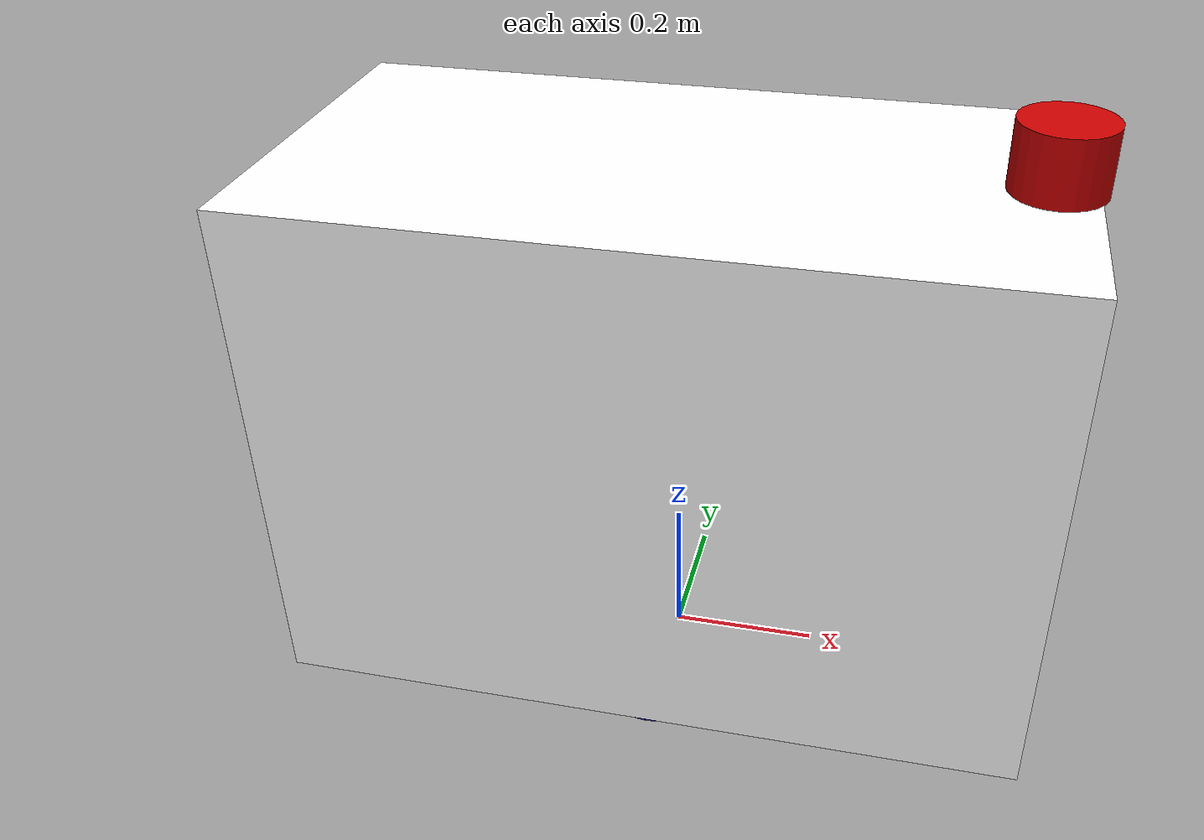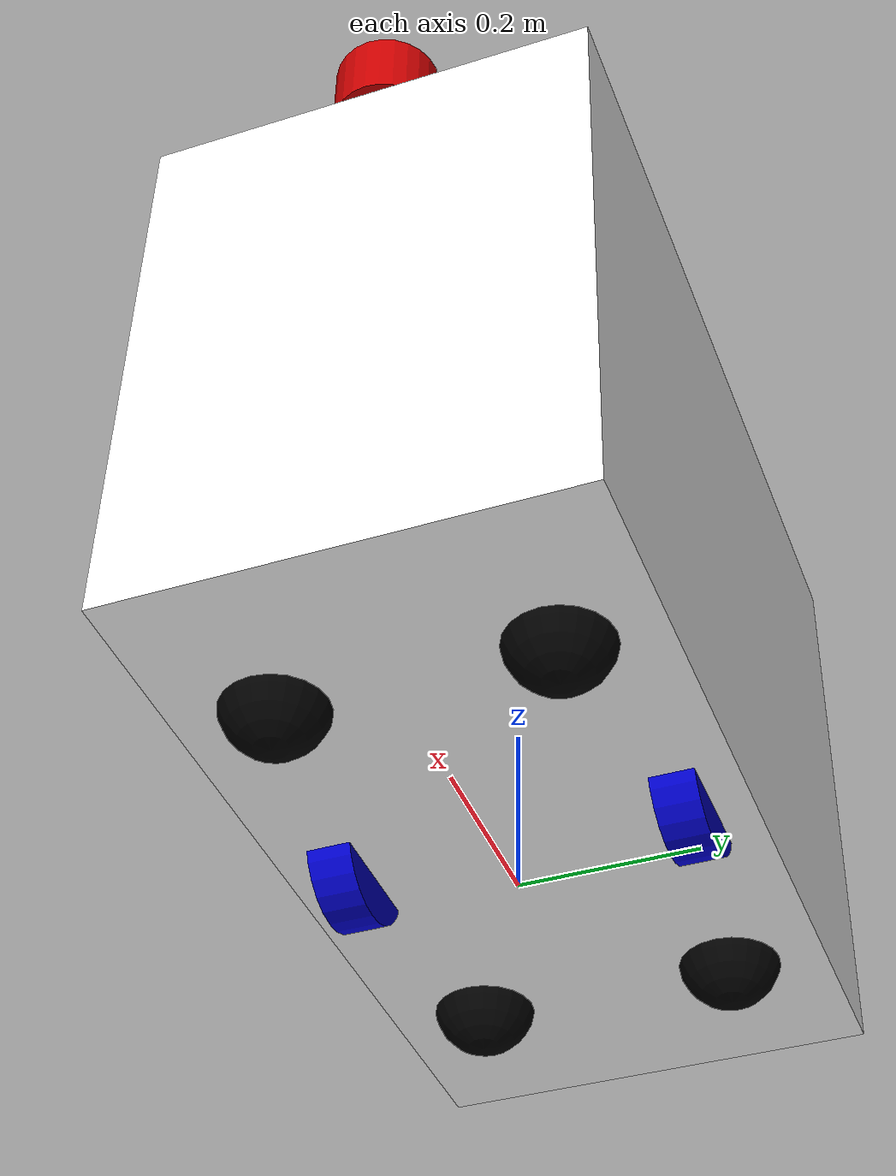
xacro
<?xml version="1.0"?>
<robot xmlns:xacro="http://www.ros.org/wiki/xacro"  name="agv">

    <xacro:include filename="inertial.xacro"/>
    <xacro:include filename="materials.xacro"/>

    <xacro:include filename="body.xacro" />
    <xacro:include filename="lidar.xacro" />

    <xacro:include filename="$(find agv_description)/gazebo/body.xacro" />
    <xacro:include filename="$(find agv_description)/gazebo/lidar.xacro" />

    <xacro:include filename="$(find agv_description)/gazebo/controller.xacro" />
    <xacro:include filename="$(find agv_description)/ros2_control/gazebo_system.xacro" />

</robot>

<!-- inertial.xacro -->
<robot xmlns:xacro="http://www.ros.org/wiki/xacro" >

    <!-- https://en.wikipedia.org/wiki/List_of_moments_of_inertia -->

    <xacro:macro name="inertial_sphere" params="mass radius *origin">
        <inertial>
            <xacro:insert_block name="origin"/>
            <mass value="${mass}" />
            <inertia ixx="${(2/5) * mass * (radius*radius)}" ixy="0.0" ixz="0.0"
                    iyy="${(2/5) * mass * (radius*radius)}" iyz="0.0"
                    izz="${(2/5) * mass * (radius*radius)}" />
        </inertial>
    </xacro:macro>

    <xacro:macro name="inertial_box" params="mass x y z *origin">
        <inertial>
            <xacro:insert_block name="origin"/>
            <mass value="${mass}" />
            <inertia ixx="${(1/12) * mass * (y*y+z*z)}" ixy="0.0" ixz="0.0"
                    iyy="${(1/12) * mass * (x*x+z*z)}" iyz="0.0"
                    izz="${(1/12) * mass * (x*x+y*y)}" />
        </inertial>
    </xacro:macro>

    <xacro:macro name="inertial_cylinder" params="mass length radius *origin">
        <inertial>
            <xacro:insert_block name="origin"/>
            <mass value="${mass}" />
            <inertia ixx="${(1/12) * mass * (3*radius*radius + length*length)}" ixy="0.0" ixz="0.0"
                    iyy="${(1/12) * mass * (3*radius*radius + length*length)}" iyz="0.0"
                    izz="${(1/2) * mass * (radius*radius)}" />
        </inertial>
    </xacro:macro>

</robot>

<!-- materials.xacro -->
<robot xmlns:xacro="http://www.ros.org/wiki/xacro" >

  <material name="black">
    <color rgba="0.0 0.0 0.0 1.0"/>
  </material>

  <material name="blue">
    <color rgba="0.0 0.0 0.8 1.0"/>
  </material>

  <material name="brown">
    <color rgba="0.8706 0.8118 0.7647 1.0"/>
  </material>

  <material name="dark">
    <color rgba="0.3 0.3 0.3 1.0"/>
  </material>

  <material name="green">
    <color rgba="0.0 0.8 0.0 1.0"/>
  </material>

  <material name="grey">
    <color rgba="0.5 0.5 0.5 1.0"/>
  </material>

  <material name="light_black">
    <color rgba="0.4 0.4 0.4 1.0"/>
  </material>

  <material name="orange">
    <color rgba="1.0 0.4235 0.0392 1.0"/>
  </material>

  <material name="red">
    <color rgba="0.8 0.0 0.0 1.0"/>
  </material>

  <material name="white">
    <color rgba="1.0 1.0 1.0 1.0"/>
  </material>

</robot>

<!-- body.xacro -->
<robot xmlns:xacro="http://www.ros.org/wiki/xacro" >

    <!-- BASE -->

    <link name="base_link"></link>

    <!-- CHASSIS -->

    <joint name="chassis_joint" type="fixed">
        <parent link="base_link"/>
        <child link="chassis"/>
        <origin xyz="0 0 0"/>
    </joint>

    <link name="chassis">
        <visual>
            <origin xyz="0 0 0.4"/>
            <geometry>
                <box size="1 0.52 0.7"/>
            </geometry>
            <material name="white"/>
        </visual>
        <collision>
            <origin xyz="0 0 0.4"/>
            <geometry>
                <box size="1 0.52 0.7"/>
            </geometry>
        </collision>
        <xacro:inertial_box mass="10" x="1" y="0.52" z="0.7">
            <origin xyz="0 0 0.4" rpy="0 0 0"/>
        </xacro:inertial_box>
    </link>

    <!-- LEFT WHEEL -->

    <joint name="left_wheel_joint" type="continuous">
        <parent link="base_link"/>
        <child link="left_wheel"/>
        <origin xyz="0 0.192 0.075" rpy="-${pi/2} 0 0" />
        <axis xyz="0 0 1"/>
    </joint>

    <link name="left_wheel">
        <visual>
            <geometry>
                <cylinder radius="0.075" length="0.05"/>
            </geometry>
            <material name="blue"/>
        </visual>
        <collision>
            <geometry>
                <cylinder radius="0.075" length="0.05"/>
            </geometry>
        </collision>
        <xacro:inertial_cylinder mass="2" length="0.05" radius="0.075">
            <origin xyz="0 0 0" rpy="0 0 0"/>
        </xacro:inertial_cylinder>
    </link>

    <!-- RIGHT WHEEL -->

    <joint name="right_wheel_joint" type="continuous">
        <parent link="base_link"/>
        <child link="right_wheel"/>
        <origin xyz="0 -0.192 0.075" rpy="${pi/2} 0 0" />
        <axis xyz="0 0 -1"/>
    </joint>

    <link name="right_wheel">
        <visual>
            <geometry>
                <cylinder radius="0.075" length="0.05"/>
            </geometry>
            <material name="blue"/>
        </visual>
        <collision>
            <geometry>
                <cylinder radius="0.075" length="0.05"/>
            </geometry>
        </collision>
        <xacro:inertial_cylinder mass="2" length="0.05" radius="0.075">
            <origin xyz="0 0 0" rpy="0 0 0"/>
        </xacro:inertial_cylinder>
    </link>

    <!-- CASTER WHEEL -->

    <joint name="caster_left_front_wheel_joint" type="fixed">
        <parent link="chassis"/>
        <child link="caster_left_front_wheel"/>
        <origin xyz="0.3 0.15 0.06"/>
    </joint>

    <link name="caster_left_front_wheel">
        <visual>
            <geometry>
                <sphere radius="0.06"/>
            </geometry>
            <material name="black"/>
        </visual>
        <collision>
            <geometry>
                <sphere radius="0.06"/>
            </geometry>
        </collision>
        <xacro:inertial_sphere mass="1" radius="0.06">
            <origin xyz="0 0 0" rpy="0 0 0"/>
        </xacro:inertial_sphere>
    </link>

    <joint name="caster_right_front_wheel_joint" type="fixed">
        <parent link="chassis"/>
        <child link="caster_right_front_wheel"/>
        <origin xyz="0.3 -0.15 0.06"/>
    </joint>

    <link name="caster_right_front_wheel">
        <visual>
            <geometry>
                <sphere radius="0.06"/>
            </geometry>
            <material name="black"/>
        </visual>
        <collision>
            <geometry>
                <sphere radius="0.06"/>
            </geometry>
        </collision>
        <xacro:inertial_sphere mass="1" radius="0.06">
            <origin xyz="0 0 0" rpy="0 0 0"/>
        </xacro:inertial_sphere>
    </link>

    <joint name="caster_left_back_wheel_joint" type="fixed">
        <parent link="chassis"/>
        <child link="caster_left_back_wheel"/>
        <origin xyz="-0.3 0.15 0.06"/>
    </joint>

    <link name="caster_left_back_wheel">
        <visual>
            <geometry>
                <sphere radius="0.06"/>
            </geometry>
            <material name="black"/>
        </visual>
        <collision>
            <geometry>
                <sphere radius="0.06"/>
            </geometry>
        </collision>
        <xacro:inertial_sphere mass="1" radius="0.06">
            <origin xyz="0 0 0" rpy="0 0 0"/>
        </xacro:inertial_sphere>
    </link>

    <joint name="caster_right_back_wheel_joint" type="fixed">
        <parent link="chassis"/>
        <child link="caster_right_back_wheel"/>
        <origin xyz="-0.3 -0.15 0.06"/>
    </joint>

    <link name="caster_right_back_wheel">
        <visual>
            <geometry>
                <sphere radius="0.06"/>
            </geometry>
            <material name="black"/>
        </visual>
        <collision>
            <geometry>
                <sphere radius="0.06"/>
            </geometry>
        </collision>
        <xacro:inertial_sphere mass="1" radius="0.06">
            <origin xyz="0 0 0" rpy="0 0 0"/>
        </xacro:inertial_sphere>
    </link>

</robot>

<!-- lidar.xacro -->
<robot xmlns:xacro="http://www.ros.org/wiki/xacro" >

    <joint name="laser_joint" type="fixed">
        <parent link="chassis"/>
        <child link="laser_frame"/>
        <origin xyz="0.45 0 0.793" rpy="0 0 0"/>
    </joint>

    <link name="laser_frame">
        <visual>
            <geometry>
                <cylinder radius="0.06" length="0.086"/>
            </geometry>
            <material name="red"/>
        </visual>
        <collision>
            <geometry>
                <cylinder radius="0.06" length="0.086"/>
            </geometry>
        </collision>
        <xacro:inertial_cylinder mass="0.28" length="0.086" radius="0.06">
            <origin xyz="0 0 0" rpy="0 0 0"/>
        </xacro:inertial_cylinder>
    </link>

</robot>
